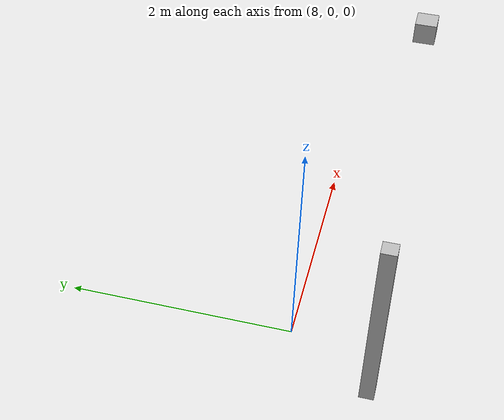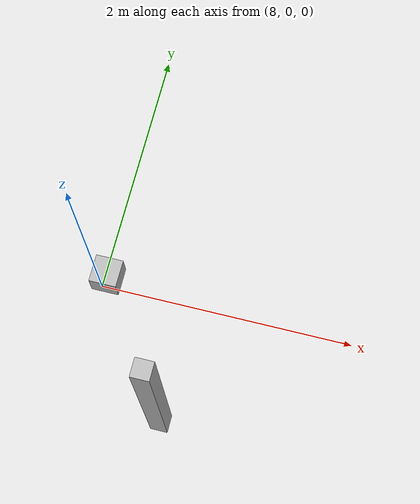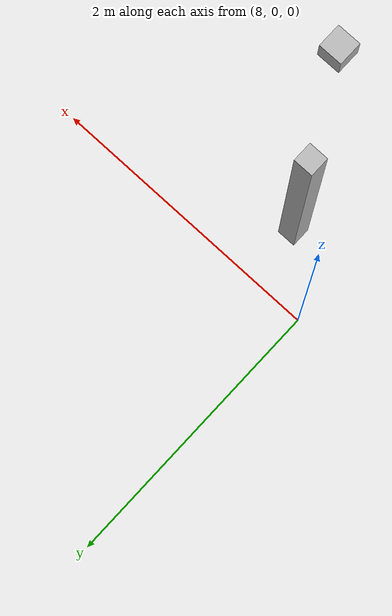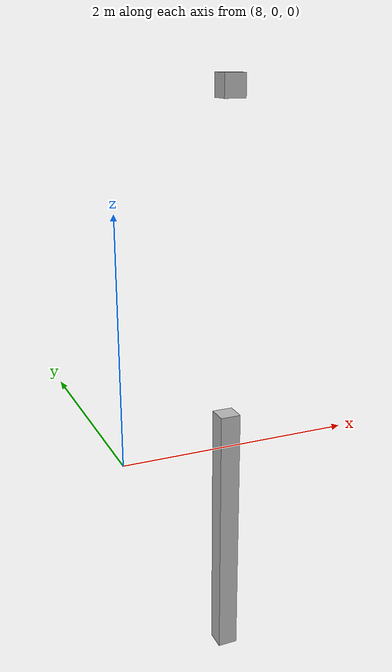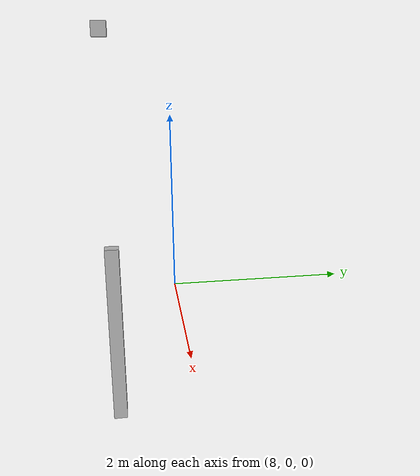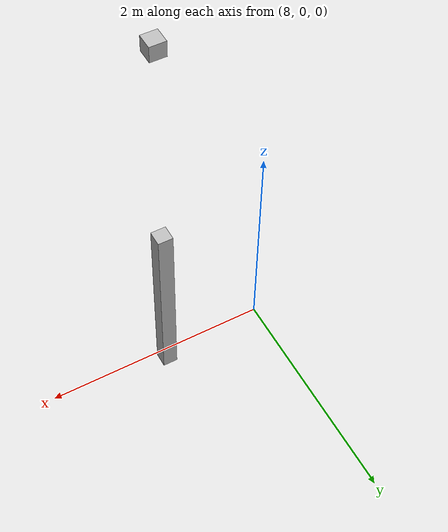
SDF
<sdf version="1.7">
 <world name="default">
  <model name="orthogonal_747_2.000.15_TS">
   <static>1</static>
   <link name="z_link_1_2_7">
    <inertial>
     <mass>1</mass>
     <inertia>
      <ixx>0.166667</ixx>
      <ixy>0</ixy>
      <ixz>0</ixz>
      <iyy>0.166667</iyy>
      <iyz>0</iyz>
      <izz>0.166667</izz>
     </inertia>
    </inertial>
    <pose>15.05 4.3 2.15 0 -0 0</pose>
    <visual name="visual_0">
     <laser_retro>1310</laser_retro>
     <geometry><box><size>0.15 1e-06 2</size></box></geometry>
     <material>
      <script><name>Gazebo/Grey</name><uri>file://media/materials/scripts/gazebo.material</uri></script>
      <shader type="pixel"><normal_map>__default__</normal_map></shader>
      <ambient>0.678 0.498 0.659 1</ambient>
      <diffuse>0.7 0.7 0.7 1</diffuse>
      <specular>0.01 0.01 0.01 1</specular>
      <emissive>0 0 0 1</emissive>
     </material>
     <pose>0 -0.075 0 0 -0 0</pose>
     <transparency>1</transparency>
    </visual>
    <visual name="visual_1">
     <laser_retro>1311</laser_retro>
     <geometry><box><size>0.15 1e-06 2</size></box></geometry>
     <material>
      <script><name>Gazebo/Grey</name><uri>file://media/materials/scripts/gazebo.material</uri></script>
      <shader type="pixel"><normal_map>__default__</normal_map></shader>
      <ambient>0.447 0.624 0.812 1</ambient>
      <diffuse>0.7 0.7 0.7 1</diffuse>
      <specular>0.01 0.01 0.01 1</specular>
      <emissive>0 0 0 1</emissive>
     </material>
     <pose>0 0.075 0 0 -0 0</pose>
     <transparency>1</transparency>
    </visual>
    <visual name="visual_2">
     <laser_retro>1312</laser_retro>
     <geometry><box><size>0.15 0.15 1e-06</size></box></geometry>
     <material>
      <script><name>Gazebo/Grey</name><uri>file://media/materials/scripts/gazebo.material</uri></script>
      <shader type="pixel"><normal_map>__default__</normal_map></shader>
      <ambient>0.988 0.686 0.243 1</ambient>
      <diffuse>0.7 0.7 0.7 1</diffuse>
      <specular>0.01 0.01 0.01 1</specular>
      <emissive>0 0 0 1</emissive>
     </material>
     <pose>0 0 -1 0 -0 0</pose>
     <transparency>1</transparency>
    </visual>
    <visual name="visual_3">
     <laser_retro>1313</laser_retro>
     <geometry><box><size>1e-06 0.15 2</size></box></geometry>
     <material>
      <script><name>Gazebo/Grey</name><uri>file://media/materials/scripts/gazebo.material</uri></script>
      <shader type="pixel"><normal_map>__default__</normal_map></shader>
      <ambient>0.988 0.914 0.31 1</ambient>
      <diffuse>0.7 0.7 0.7 1</diffuse>
      <specular>0.01 0.01 0.01 1</specular>
      <emissive>0 0 0 1</emissive>
     </material>
     <pose>0.075 0 0 0 -0 0</pose>
     <transparency>1</transparency>
    </visual>
    <visual name="visual_4">
     <laser_retro>1314</laser_retro>
     <geometry><box><size>0.15 0.15 1e-06</size></box></geometry>
     <material>
      <script><name>Gazebo/Grey</name><uri>file://media/materials/scripts/gazebo.material</uri></script>
      <shader type="pixel"><normal_map>__default__</normal_map></shader>
      <ambient>0.937 0.161 0.161 1</ambient>
      <diffuse>0.7 0.7 0.7 1</diffuse>
      <specular>0.01 0.01 0.01 1</specular>
      <emissive>0 0 0 1</emissive>
     </material>
     <pose>0 0 1 0 -0 0</pose>
     <transparency>1</transparency>
    </visual>
    <visual name="visual_5">
     <laser_retro>1315</laser_retro>
     <geometry><box><size>1e-06 0.15 2</size></box></geometry>
     <material>
      <script><name>Gazebo/Grey</name><uri>file://media/materials/scripts/gazebo.material</uri></script>
      <shader type="pixel"><normal_map>__default__</normal_map></shader>
      <ambient>0.541 0.886 0.204 1</ambient>
      <diffuse>0.7 0.7 0.7 1</diffuse>
      <specular>0.01 0.01 0.01 1</specular>
      <emissive>0 0 0 1</emissive>
     </material>
     <pose>-0.075 0 0 0 -0 0</pose>
     <transparency>1</transparency>
    </visual>
    <visual name="visual_texture">
     <geometry><box><size>0.149985 0.149985 1.9998</size></box></geometry>
     <material>
      <script>
       <uri>model://BASE_MODELS/simple_block_v2_textured/materials/scripts</uri>
       <uri>model://BASE_MODELS/simple_block_v2_textured/materials/textures</uri>
       <name>metal</name>
      </script>
     </material>
     <laser_retro>1316</laser_retro>
    </visual>
    <collision name="collision">
     <geometry><box><size>0.15 0.15 2</size></box></geometry>
     <surface>
      <friction>
       <ode><mu>1</mu><mu2>1</mu2><fdir1>0 0 0</fdir1><slip1>0</slip1><slip2>0</slip2></ode>
       <torsional>
        <coefficient>1</coefficient>
        <patch_radius>0</patch_radius>
        <surface_radius>0</surface_radius>
        <use_patch_radius>1</use_patch_radius>
        <ode><slip>0</slip></ode>
       </torsional>
      </friction>
      <bounce><restitution_coefficient>0</restitution_coefficient><threshold>1e+06</threshold></bounce>
      <contact>
       <collide_without_contact>0</collide_without_contact>
       <collide_without_contact_bitmask>1</collide_without_contact_bitmask>
       <collide_bitmask>1</collide_bitmask>
       <ode>
        <soft_cfm>0</soft_cfm>
        <soft_erp>0.2</soft_erp>
        <kp>1e+13</kp>
        <kd>1</kd>
        <max_vel>0.01</max_vel>
        <min_depth>0</min_depth>
       </ode>
       <bullet>
        <split_impulse>1</split_impulse>
        <split_impulse_penetration_threshold>-0.01</split_impulse_penetration_threshold>
        <soft_cfm>0</soft_cfm>
        <soft_erp>0.2</soft_erp>
        <kp>1e+13</kp>
        <kd>1</kd>
       </bullet>
      </contact>
     </surface>
    </collision>
   </link>
   <link name="u_link_2_2_7">
    <inertial>
     <mass>1</mass>
     <inertia>
      <ixx>0.166667</ixx>
      <ixy>0</ixy>
      <ixz>0</ixz>
      <iyy>0.166667</iyy>
      <iyz>0</iyz>
      <izz>0.166667</izz>
     </inertia>
    </inertial>
    <pose>15.05 4.3 5.375 0 -0 0</pose>
    <visual name="visual_0">
     <laser_retro>2206</laser_retro>
     <geometry><box><size>0.15 1e-06 0.15</size></box></geometry>
     <material>
      <script><name>Gazebo/Grey</name><uri>file://media/materials/scripts/gazebo.material</uri></script>
      <shader type="pixel"><normal_map>__default__</normal_map></shader>
      <ambient>0.678 0.498 0.659 1</ambient>
      <diffuse>0.7 0.7 0.7 1</diffuse>
      <specular>0.01 0.01 0.01 1</specular>
      <emissive>0 0 0 1</emissive>
     </material>
     <pose>0 -0.075 0 0 -0 0</pose>
     <transparency>1</transparency>
    </visual>
    <visual name="visual_1">
     <laser_retro>2207</laser_retro>
     <geometry><box><size>0.15 1e-06 0.15</size></box></geometry>
     <material>
      <script><name>Gazebo/Grey</name><uri>file://media/materials/scripts/gazebo.material</uri></script>
      <shader type="pixel"><normal_map>__default__</normal_map></shader>
      <ambient>0.447 0.624 0.812 1</ambient>
      <diffuse>0.7 0.7 0.7 1</diffuse>
      <specular>0.01 0.01 0.01 1</specular>
      <emissive>0 0 0 1</emissive>
     </material>
     <pose>0 0.075 0 0 -0 0</pose>
     <transparency>1</transparency>
    </visual>
    <visual name="visual_2">
     <laser_retro>2208</laser_retro>
     <geometry><box><size>0.15 0.15 1e-06</size></box></geometry>
     <material>
      <script><name>Gazebo/Grey</name><uri>file://media/materials/scripts/gazebo.material</uri></script>
      <shader type="pixel"><normal_map>__default__</normal_map></shader>
      <ambient>0.988 0.686 0.243 1</ambient>
      <diffuse>0.7 0.7 0.7 1</diffuse>
      <specular>0.01 0.01 0.01 1</specular>
      <emissive>0 0 0 1</emissive>
     </material>
     <pose>0 0 -0.075 0 -0 0</pose>
     <transparency>1</transparency>
    </visual>
    <visual name="visual_3">
     <laser_retro>2209</laser_retro>
     <geometry><box><size>1e-06 0.15 0.15</size></box></geometry>
     <material>
      <script><name>Gazebo/Grey</name><uri>file://media/materials/scripts/gazebo.material</uri></script>
      <shader type="pixel"><normal_map>__default__</normal_map></shader>
      <ambient>0.988 0.914 0.31 1</ambient>
      <diffuse>0.7 0.7 0.7 1</diffuse>
      <specular>0.01 0.01 0.01 1</specular>
      <emissive>0 0 0 1</emissive>
     </material>
     <pose>0.075 0 0 0 -0 0</pose>
     <transparency>1</transparency>
    </visual>
    <visual name="visual_4">
     <laser_retro>2210</laser_retro>
     <geometry><box><size>0.15 0.15 1e-06</size></box></geometry>
     <material>
      <script><name>Gazebo/Grey</name><uri>file://media/materials/scripts/gazebo.material</uri></script>
      <shader type="pixel"><normal_map>__default__</normal_map></shader>
      <ambient>0.937 0.161 0.161 1</ambient>
      <diffuse>0.7 0.7 0.7 1</diffuse>
      <specular>0.01 0.01 0.01 1</specular>
      <emissive>0 0 0 1</emissive>
     </material>
     <pose>0 0 0.075 0 -0 0</pose>
     <transparency>1</transparency>
    </visual>
    <visual name="visual_5">
     <laser_retro>2211</laser_retro>
     <geometry><box><size>1e-06 0.15 0.15</size></box></geometry>
     <material>
      <script><name>Gazebo/Grey</name><uri>file://media/materials/scripts/gazebo.material</uri></script>
      <shader type="pixel"><normal_map>__default__</normal_map></shader>
      <ambient>0.541 0.886 0.204 1</ambient>
      <diffuse>0.7 0.7 0.7 1</diffuse>
      <specular>0.01 0.01 0.01 1</specular>
      <emissive>0 0 0 1</emissive>
     </material>
     <pose>-0.075 0 0 0 -0 0</pose>
     <transparency>1</transparency>
    </visual>
    <visual name="visual_texture">
     <geometry><box><size>0.149985 0.149985 0.149985</size></box></geometry>
     <material>
      <script>
       <uri>model://BASE_MODELS/simple_block_v2_textured/materials/scripts</uri>
       <uri>model://BASE_MODELS/simple_block_v2_textured/materials/textures</uri>
       <name>metal</name>
      </script>
     </material>
     <laser_retro>2212</laser_retro>
    </visual>
    <collision name="collision">
     <geometry><box><size>0.15 0.15 0.15</size></box></geometry>
     <surface>
      <friction>
       <ode><mu>1</mu><mu2>1</mu2><fdir1>0 0 0</fdir1><slip1>0</slip1><slip2>0</slip2></ode>
       <torsional>
        <coefficient>1</coefficient>
        <patch_radius>0</patch_radius>
        <surface_radius>0</surface_radius>
        <use_patch_radius>1</use_patch_radius>
        <ode><slip>0</slip></ode>
       </torsional>
      </friction>
      <bounce><restitution_coefficient>0</restitution_coefficient><threshold>1e+06</threshold></bounce>
      <contact>
       <collide_without_contact>0</collide_without_contact>
       <collide_without_contact_bitmask>1</collide_without_contact_bitmask>
       <collide_bitmask>1</collide_bitmask>
       <ode>
        <soft_cfm>0</soft_cfm>
        <soft_erp>0.2</soft_erp>
        <kp>1e+13</kp>
        <kd>1</kd>
        <max_vel>0.01</max_vel>
        <min_depth>0</min_depth>
       </ode>
       <bullet>
        <split_impulse>1</split_impulse>
        <split_impulse_penetration_threshold>-0.01</split_impulse_penetration_threshold>
        <soft_cfm>0</soft_cfm>
        <soft_erp>0.2</soft_erp>
        <kp>1e+13</kp>
        <kd>1</kd>
       </bullet>
      </contact>
     </surface>
    </collision>
   </link>
   <pose>-6.47624 -5 -2.5 0 -0 0</pose>
  </model>
 </world>
</sdf>
